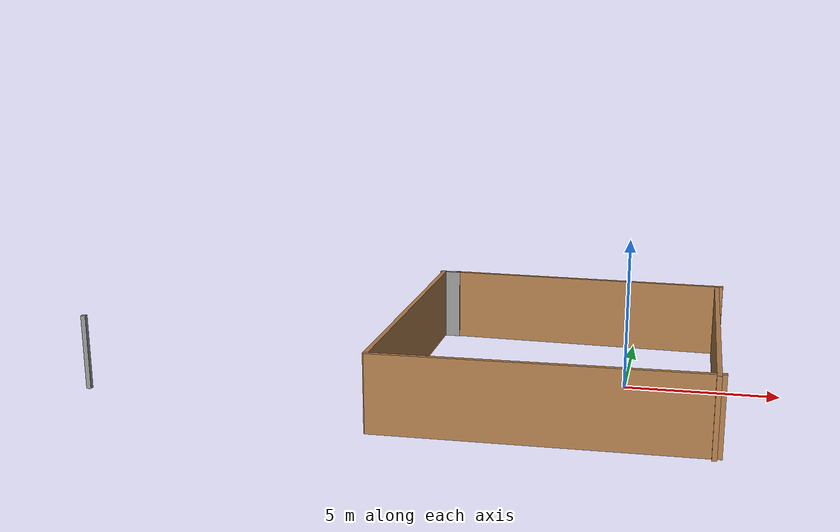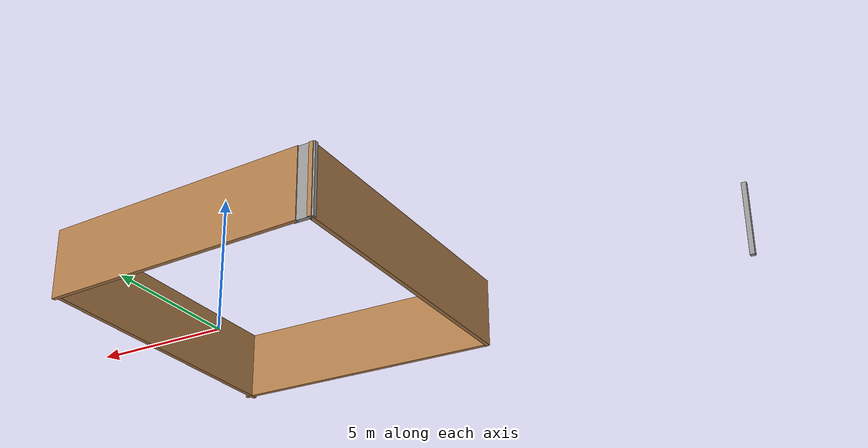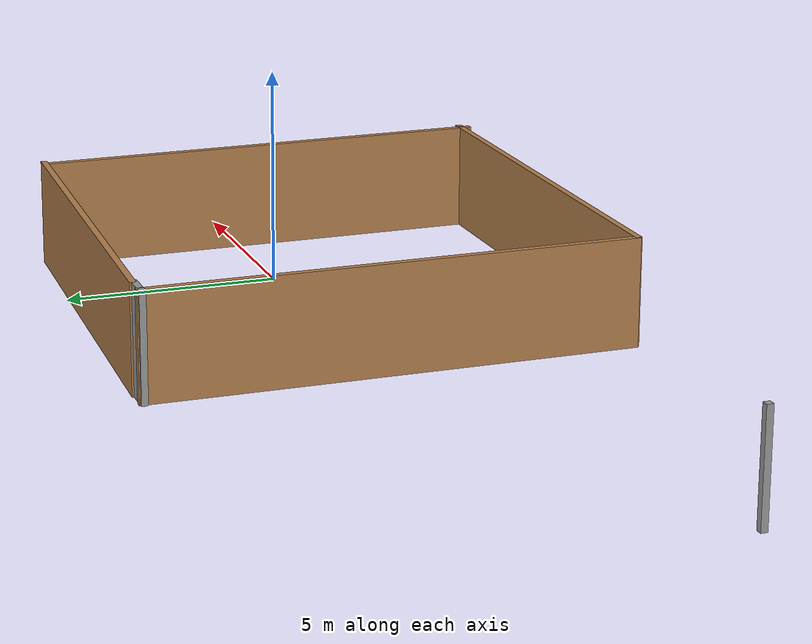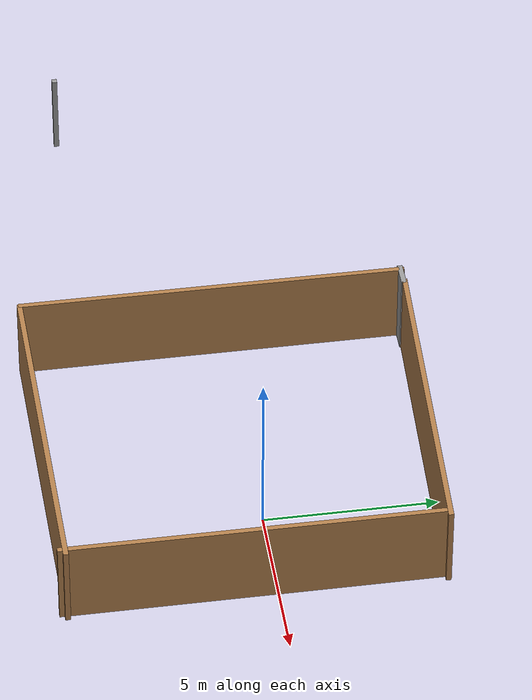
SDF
<?xml version='1.0'?>
<sdf version='1.7'>
  <model name='world.world'>
    <pose>-7.1927 -0.420336 0 0 -0 0</pose>
    <link name='Wall_26'>
      <collision name='Wall_26_Collision'>
        <geometry>
          <box>
            <size>0.16 0.15 2.5</size>
          </box>
        </geometry>
        <pose>0 0 1.25 0 -0 0</pose>
      </collision>
      <visual name='Wall_26_Visual'>
        <pose>0 0 1.25 0 -0 0</pose>
        <geometry>
          <box>
            <size>0.16 0.15 2.5</size>
          </box>
        </geometry>
        <material>
          <script>
            <uri>file://media/materials/scripts/gazebo.material</uri>
            <name>Gazebo/Grey</name>
          </script>
          <ambient>1 1 1 1</ambient>
        </material>
        <meta>
          <layer>0</layer>
        </meta>
      </visual>
      <pose>-10.2278 -3.356 0 0 -0 0</pose>
    </link>
    <link name='Wall_28'>
      <collision name='Wall_28_Collision'>
        <geometry>
          <box>
            <size>11.25 0.15 2.5</size>
          </box>
        </geometry>
        <pose>0 0 1.25 0 -0 0</pose>
      </collision>
      <visual name='Wall_28_Visual'>
        <pose>0 0 1.25 0 -0 0</pose>
        <geometry>
          <box>
            <size>11.25 0.15 2.5</size>
          </box>
        </geometry>
        <material>
          <script>
            <uri>file://media/materials/scripts/gazebo.material</uri>
            <name>Gazebo/Wood</name>
          </script>
          <ambient>1 1 1 1</ambient>
        </material>
        <meta>
          <layer>0</layer>
        </meta>
      </visual>
      <pose>-0.050633 0.031925 0 0 -0 -1.5708</pose>
    </link>
    <link name='Wall_29'>
      <collision name='Wall_29_Collision'>
        <geometry>
          <box>
            <size>10.3946 0.15 2.5</size>
          </box>
        </geometry>
        <pose>0 0 1.25 0 -0 0</pose>
      </collision>
      <visual name='Wall_29_Visual'>
        <pose>0 0 1.25 0 -0 0</pose>
        <geometry>
          <box>
            <size>10.3946 0.15 2.5</size>
          </box>
        </geometry>
        <material>
          <script>
            <uri>file://media/materials/scripts/gazebo.material</uri>
            <name>Gazebo/Wood</name>
          </script>
          <ambient>1 1 1 1</ambient>
        </material>
        <meta>
          <layer>0</layer>
        </meta>
      </visual>
      <pose>5.10748 -5.50004 0 0 -0 0.010564</pose>
    </link>
    <link name='Wall_30'>
      <collision name='Wall_30_Collision'>
        <geometry>
          <box>
            <size>10.75 0.15 2.5</size>
          </box>
        </geometry>
        <pose>0 0 1.25 0 -0 0</pose>
      </collision>
      <visual name='Wall_30_Visual'>
        <pose>0 0 1.25 0 -0 0</pose>
        <geometry>
          <box>
            <size>10.75 0.15 2.5</size>
          </box>
        </geometry>
        <material>
          <script>
            <uri>file://media/materials/scripts/gazebo.material</uri>
            <name>Gazebo/Wood</name>
          </script>
          <ambient>1 1 1 1</ambient>
        </material>
        <meta>
          <layer>0</layer>
        </meta>
      </visual>
      <pose>10.0852 -0.290224 0 0 -0 1.5708</pose>
    </link>
    <link name='Wall_31'>
      <collision name='Wall_31_Collision'>
        <geometry>
          <box>
            <size>9.90117 0.15 2.5</size>
          </box>
        </geometry>
        <pose>0 0 1.25 0 -0 0</pose>
      </collision>
      <visual name='Wall_31_Visual'>
        <pose>0 0 1.25 0 -0 0</pose>
        <geometry>
          <box>
            <size>9.90117 0.15 2.5</size>
          </box>
        </geometry>
        <material>
          <script>
            <uri>file://media/materials/scripts/gazebo.material</uri>
            <name>Gazebo/Wood</name>
          </script>
          <ambient>1 1 1 1</ambient>
        </material>
        <meta>
          <layer>0</layer>
        </meta>
      </visual>
      <pose>5.35874 5.37052 0 0 -0 3.09718</pose>
    </link>
    <link name='Wall_32'>
      <collision name='Wall_32_Collision'>
        <geometry>
          <box>
            <size>0.75 0.15 2.5</size>
          </box>
        </geometry>
        <pose>0 0 1.25 0 -0 0</pose>
      </collision>
      <visual name='Wall_32_Visual'>
        <pose>0 0 1.25 0 -0 0</pose>
        <geometry>
          <box>
            <size>0.75 0.15 2.5</size>
          </box>
        </geometry>
        <material>
          <script>
            <uri>file://media/materials/scripts/gazebo.material</uri>
            <name>Gazebo/Grey</name>
          </script>
          <ambient>1 1 1 1</ambient>
        </material>
        <meta>
          <layer>0</layer>
        </meta>
      </visual>
      <pose>0.187963 5.55089 0 0 -0 3.14159</pose>
    </link>
    <static>1</static>
  </model>
</sdf>
